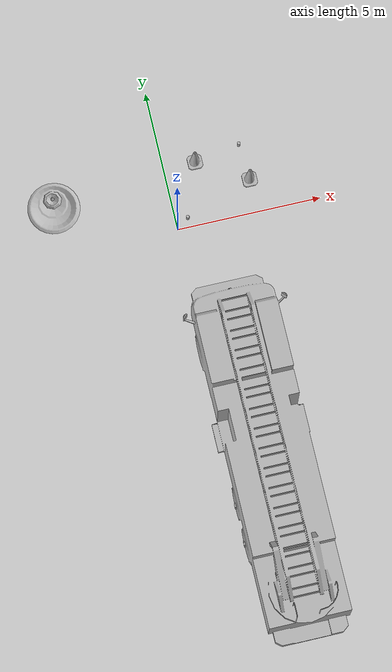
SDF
<sdf version="1.7">
 <world name="default">
  <light name="sun" type="directional">
   <pose>0 0 10 0 -0 0</pose>
   <diffuse>0.8 0.8 0.8 1</diffuse>
   <specular>0.2 0.2 0.2 1</specular>
   <attenuation>
    <range>1000</range>
    <constant>0.9</constant>
    <linear>0.01</linear>
    <quadratic>0.001</quadratic>
   </attenuation>
   <direction>-0.5 0.1 -0.9</direction>
   <spot><inner_angle>0</inner_angle><outer_angle>0</outer_angle><falloff>0</falloff></spot>
  </light>
  <model name="ground_plane">
   <static>1</static>
   <link name="link">
    <collision name="collision">
     <geometry><plane><normal>0 0 1</normal><size>100 100</size></plane></geometry>
     <surface><friction><ode><mu>100</mu><mu2>50</mu2></ode></friction></surface>
    </collision>
    <visual name="visual">
     <cast_shadows>0</cast_shadows>
     <geometry><plane><normal>0 0 1</normal><size>100 100</size></plane></geometry>
     <material>
      <script><uri>file://media/materials/scripts/gazebo.material</uri><name>Gazebo/Grey</name></script>
     </material>
    </visual>
   </link>
  </model>
  <gravity>0 0 -9.8</gravity>
  <magnetic_field>6e-06 2.3e-05 -4.2e-05</magnetic_field>
  <atmosphere type="adiabatic"/>
  <physics type="ode">
   <max_step_size>0.001</max_step_size>
   <real_time_factor>1</real_time_factor>
   <real_time_update_rate>1000</real_time_update_rate>
  </physics>
  <scene><ambient>0.4 0.4 0.4 1</ambient><background>0.7 0.7 0.7 1</background><shadows>1</shadows></scene>
  <audio><device>default</device></audio>
  <spherical_coordinates>
   <surface_model>EARTH_WGS84</surface_model>
   <latitude_deg>0</latitude_deg>
   <longitude_deg>0</longitude_deg>
   <elevation>0</elevation>
   <heading_deg>0</heading_deg>
  </spherical_coordinates>
  <model name="Construction Cone">
   <link name="link">
    <collision name="collision">
     <geometry>
      <mesh><scale>10 10 10</scale><uri>model://construction_cone/meshes/construction_cone.dae</uri></mesh>
     </geometry>
    </collision>
    <visual name="visual">
     <geometry>
      <mesh><scale>10 10 10</scale><uri>model://construction_cone/meshes/construction_cone.dae</uri></mesh>
     </geometry>
    </visual>
    <inertial>
     <inertia><ixx>1</ixx><ixy>0</ixy><ixz>0</ixz><iyy>1</iyy><iyz>0</iyz><izz>1</izz></inertia>
     <mass>1</mass>
    </inertial>
   </link>
   <pose>1.10932 2.21063 -0 0 -1e-06 0</pose>
  </model>
  <model name="beer">
   <link name="link">
    <pose>0 0 0.115 0 -0 0</pose>
    <inertial>
     <mass>0.39</mass>
     <inertia><ixx>0.00058</ixx><ixy>0</ixy><ixz>0</ixz><iyy>0.00058</iyy><iyz>0</iyz><izz>0.00019</izz></inertia>
    </inertial>
    <collision name="collision">
     <geometry><cylinder><radius>0.055</radius><length>0.23</length></cylinder></geometry>
    </collision>
    <visual name="visual">
     <geometry><cylinder><radius>0.055</radius><length>0.23</length></cylinder></geometry>
     <material>
      <script>
       <uri>model://beer/materials/scripts</uri>
       <uri>model://beer/materials/textures</uri>
       <name>Beer/Diffuse</name>
      </script>
     </material>
    </visual>
   </link>
   <pose>0.41827 0.316773 -7e-06 -1e-06 -0 -7e-06</pose>
  </model>
  <model name="fountain">
   <static>1</static>
   <link name="link">
    <collision name="collision">
     <geometry><mesh><uri>model://fountain/meshes/fountain.dae</uri></mesh></geometry>
    </collision>
    <visual name="visual">
     <geometry><mesh><uri>model://fountain/meshes/fountain.dae</uri></mesh></geometry>
    </visual>
   </link>
   <pose>-3.99593 1.33363 0 0 -0 0</pose>
  </model>
  <model name="fire_truck">
   <static>1</static>
   <link name="link">
    <collision name="collision">
     <geometry>
      <mesh><scale>0.1 0.1 0.1</scale><uri>model://fire_truck/meshes/fire_truck.obj</uri></mesh>
     </geometry>
    </collision>
    <visual name="visual">
     <geometry>
      <mesh><scale>0.1 0.1 0.1</scale><uri>model://fire_truck/meshes/fire_truck.obj</uri></mesh>
     </geometry>
    </visual>
   </link>
   <pose>1.11549 -8.23082 0 0 -0 0</pose>
  </model>
  <model name="Construction Cone_0">
   <link name="link">
    <collision name="collision">
     <geometry>
      <mesh><scale>10 10 10</scale><uri>model://construction_cone/meshes/construction_cone.dae</uri></mesh>
     </geometry>
    </collision>
    <visual name="visual">
     <geometry>
      <mesh><scale>10 10 10</scale><uri>model://construction_cone/meshes/construction_cone.dae</uri></mesh>
     </geometry>
    </visual>
    <inertial>
     <inertia><ixx>1</ixx><ixy>0</ixy><ixz>0</ixz><iyy>1</iyy><iyz>0</iyz><izz>1</izz></inertia>
     <mass>1</mass>
    </inertial>
   </link>
   <pose>2.80287 1.18415 -0 -0 -0 -0</pose>
  </model>
  <model name="beer_0">
   <link name="link">
    <pose>0 0 0.115 0 -0 0</pose>
    <inertial>
     <mass>0.39</mass>
     <inertia><ixx>0.00058</ixx><ixy>0</ixy><ixz>0</ixz><iyy>0.00058</iyy><iyz>0</iyz><izz>0.00019</izz></inertia>
    </inertial>
    <collision name="collision">
     <geometry><cylinder><radius>0.055</radius><length>0.23</length></cylinder></geometry>
    </collision>
    <visual name="visual">
     <geometry><cylinder><radius>0.055</radius><length>0.23</length></cylinder></geometry>
     <material>
      <script>
       <uri>model://beer/materials/scripts</uri>
       <uri>model://beer/materials/textures</uri>
       <name>Beer/Diffuse</name>
      </script>
     </material>
    </visual>
   </link>
   <pose>2.72229 2.47706 -7e-06 -1e-06 0 -3e-06</pose>
  </model>
 </world>
</sdf>
